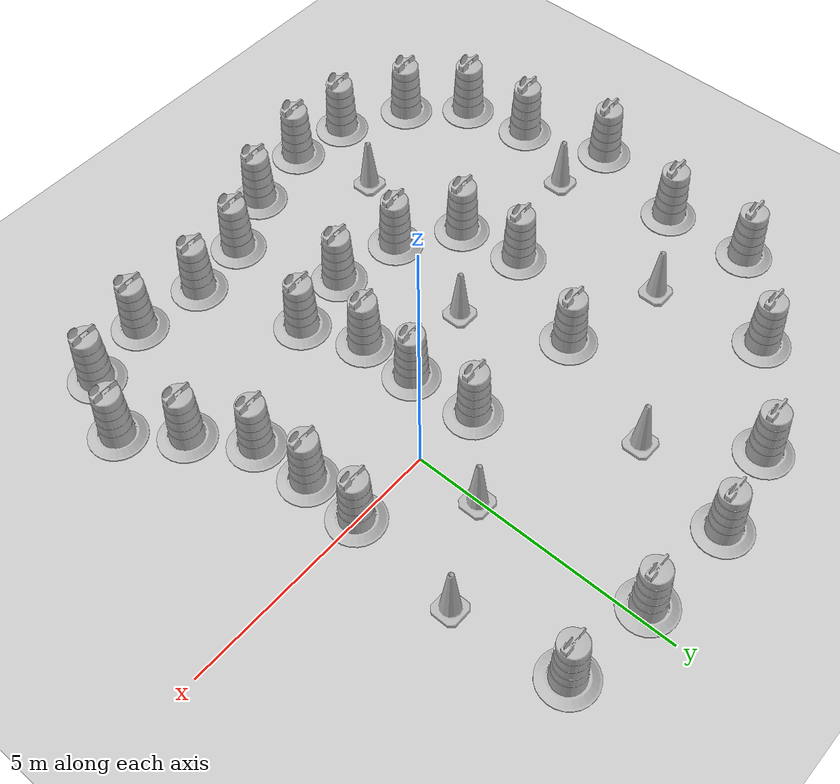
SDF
<sdf version="1.7">
 <world name="default">
  <light name="sun" type="directional">
   <pose>0 0 10 0 -0 0</pose>
   <diffuse>0.8 0.8 0.8 1</diffuse>
   <specular>0.2 0.2 0.2 1</specular>
   <attenuation>
    <range>1000</range>
    <constant>0.9</constant>
    <linear>0.01</linear>
    <quadratic>0.001</quadratic>
   </attenuation>
   <direction>-0.5 0.1 -0.9</direction>
   <spot><inner_angle>0</inner_angle><outer_angle>0</outer_angle><falloff>0</falloff></spot>
  </light>
  <model name="ground_plane">
   <static>1</static>
   <link name="link">
    <collision name="collision">
     <geometry><plane><normal>0 0 1</normal><size>100 100</size></plane></geometry>
     <surface>
      <contact><collide_bitmask>65535</collide_bitmask></contact>
      <friction><ode><mu>100</mu><mu2>50</mu2></ode></friction>
     </surface>
    </collision>
    <visual name="visual">
     <cast_shadows>0</cast_shadows>
     <geometry><plane><normal>0 0 1</normal><size>100 100</size></plane></geometry>
     <material>
      <script><uri>file://media/materials/scripts/gazebo.material</uri><name>Gazebo/Grey</name></script>
     </material>
    </visual>
   </link>
  </model>
  <gravity>0 0 -9.8</gravity>
  <magnetic_field>6e-06 2.3e-05 -4.2e-05</magnetic_field>
  <atmosphere type="adiabatic"/>
  <physics type="ode">
   <max_step_size>0.001</max_step_size>
   <real_time_factor>1</real_time_factor>
   <real_time_update_rate>1000</real_time_update_rate>
  </physics>
  <scene><ambient>0.4 0.4 0.4 1</ambient><background>0.7 0.7 0.7 1</background><shadows>1</shadows></scene>
  <spherical_coordinates>
   <surface_model>EARTH_WGS84</surface_model>
   <latitude_deg>0</latitude_deg>
   <longitude_deg>0</longitude_deg>
   <elevation>0</elevation>
   <heading_deg>0</heading_deg>
  </spherical_coordinates>
  <model name="Construction Barrel">
   <link name="link">
    <inertial>
     <pose>0 0 0.4 0 -0 0</pose>
     <mass>500</mass>
     <inertia><ixx>51.2096</ixx><iyy>51.2096</iyy><izz>25</izz><ixy>0</ixy><ixz>0</ixz><iyz>0</iyz></inertia>
    </inertial>
    <collision name="collision">
     <geometry><mesh><uri>model://construction_barrel/meshes/construction_barrel.dae</uri></mesh></geometry>
    </collision>
    <visual name="visual">
     <geometry><mesh><uri>model://construction_barrel/meshes/construction_barrel.dae</uri></mesh></geometry>
    </visual>
   </link>
   <pose>1.50129 -0.032457 -1e-06 3e-06 7e-06 -4.1e-05</pose>
  </model>
  <model name="Construction Barrel_0">
   <link name="link">
    <inertial>
     <pose>0 0 0.4 0 -0 0</pose>
     <mass>500</mass>
     <inertia><ixx>51.2096</ixx><iyy>51.2096</iyy><izz>25</izz><ixy>0</ixy><ixz>0</ixz><iyz>0</iyz></inertia>
    </inertial>
    <collision name="collision">
     <geometry><mesh><uri>model://construction_barrel/meshes/construction_barrel.dae</uri></mesh></geometry>
    </collision>
    <visual name="visual">
     <geometry><mesh><uri>model://construction_barrel/meshes/construction_barrel.dae</uri></mesh></geometry>
    </visual>
   </link>
   <pose>1.47992 -1.10936 -2e-06 1e-06 8e-06 -2.8e-05</pose>
  </model>
  <model name="Construction Barrel_1">
   <link name="link">
    <inertial>
     <pose>0 0 0.4 0 -0 0</pose>
     <mass>500</mass>
     <inertia><ixx>51.2096</ixx><iyy>51.2096</iyy><izz>25</izz><ixy>0</ixy><ixz>0</ixz><iyz>0</iyz></inertia>
    </inertial>
    <collision name="collision">
     <geometry><mesh><uri>model://construction_barrel/meshes/construction_barrel.dae</uri></mesh></geometry>
    </collision>
    <visual name="visual">
     <geometry><mesh><uri>model://construction_barrel/meshes/construction_barrel.dae</uri></mesh></geometry>
    </visual>
   </link>
   <pose>1.55071 -2.19698 -0 0 -0 -4.3e-05</pose>
  </model>
  <model name="Construction Barrel_2">
   <link name="link">
    <inertial>
     <pose>0 0 0.4 0 -0 0</pose>
     <mass>500</mass>
     <inertia><ixx>51.2096</ixx><iyy>51.2096</iyy><izz>25</izz><ixy>0</ixy><ixz>0</ixz><iyz>0</iyz></inertia>
    </inertial>
    <collision name="collision">
     <geometry><mesh><uri>model://construction_barrel/meshes/construction_barrel.dae</uri></mesh></geometry>
    </collision>
    <visual name="visual">
     <geometry><mesh><uri>model://construction_barrel/meshes/construction_barrel.dae</uri></mesh></geometry>
    </visual>
   </link>
   <pose>2.17308 -3.18027 -2e-06 1e-06 8e-06 -3.4e-05</pose>
  </model>
  <model name="Construction Cone">
   <link name="link">
    <collision name="collision">
     <geometry>
      <mesh><scale>10 10 10</scale><uri>model://construction_cone/meshes/construction_cone.dae</uri></mesh>
     </geometry>
    </collision>
    <visual name="visual">
     <geometry>
      <mesh><scale>10 10 10</scale><uri>model://construction_cone/meshes/construction_cone.dae</uri></mesh>
     </geometry>
    </visual>
    <inertial>
     <inertia><ixx>1</ixx><ixy>0</ixy><ixz>0</ixz><iyy>1</iyy><iyz>0</iyz><izz>1</izz></inertia>
     <mass>1</mass>
    </inertial>
   </link>
   <pose>0.043793 1.22764 -0 0 -0 0</pose>
  </model>
  <model name="Construction Barrel_3">
   <link name="link">
    <inertial>
     <pose>0 0 0.4 0 -0 0</pose>
     <mass>500</mass>
     <inertia><ixx>51.2096</ixx><iyy>51.2096</iyy><izz>25</izz><ixy>0</ixy><ixz>0</ixz><iyz>0</iyz></inertia>
    </inertial>
    <collision name="collision">
     <geometry><mesh><uri>model://construction_barrel/meshes/construction_barrel.dae</uri></mesh></geometry>
    </collision>
    <visual name="visual">
     <geometry><mesh><uri>model://construction_barrel/meshes/construction_barrel.dae</uri></mesh></geometry>
    </visual>
   </link>
   <pose>2.88925 -4.07505 -0 0 -0 -5.1e-05</pose>
  </model>
  <model name="Construction Barrel_4">
   <link name="link">
    <inertial>
     <pose>0 0 0.4 0 -0 0</pose>
     <mass>500</mass>
     <inertia><ixx>51.2096</ixx><iyy>51.2096</iyy><izz>25</izz><ixy>0</ixy><ixz>0</ixz><iyz>0</iyz></inertia>
    </inertial>
    <collision name="collision">
     <geometry><mesh><uri>model://construction_barrel/meshes/construction_barrel.dae</uri></mesh></geometry>
    </collision>
    <visual name="visual">
     <geometry><mesh><uri>model://construction_barrel/meshes/construction_barrel.dae</uri></mesh></geometry>
    </visual>
   </link>
   <pose>2.37088 -5.20025 -2e-06 1e-06 8e-06 -3e-05</pose>
  </model>
  <model name="Construction Barrel_5">
   <link name="link">
    <inertial>
     <pose>0 0 0.4 0 -0 0</pose>
     <mass>500</mass>
     <inertia><ixx>51.2096</ixx><iyy>51.2096</iyy><izz>25</izz><ixy>0</ixy><ixz>0</ixz><iyz>0</iyz></inertia>
    </inertial>
    <collision name="collision">
     <geometry><mesh><uri>model://construction_barrel/meshes/construction_barrel.dae</uri></mesh></geometry>
    </collision>
    <visual name="visual">
     <geometry><mesh><uri>model://construction_barrel/meshes/construction_barrel.dae</uri></mesh></geometry>
    </visual>
   </link>
   <pose>1.14317 -5.49393 -1e-06 1e-06 -9e-06 -2.7e-05</pose>
  </model>
  <model name="Construction Barrel_6">
   <link name="link">
    <inertial>
     <pose>0 0 0.4 0 -0 0</pose>
     <mass>500</mass>
     <inertia><ixx>51.2096</ixx><iyy>51.2096</iyy><izz>25</izz><ixy>0</ixy><ixz>0</ixz><iyz>0</iyz></inertia>
    </inertial>
    <collision name="collision">
     <geometry><mesh><uri>model://construction_barrel/meshes/construction_barrel.dae</uri></mesh></geometry>
    </collision>
    <visual name="visual">
     <geometry><mesh><uri>model://construction_barrel/meshes/construction_barrel.dae</uri></mesh></geometry>
    </visual>
   </link>
   <pose>-0.137895 -5.35219 0 0 0 -4.5e-05</pose>
  </model>
  <model name="Construction Barrel_7">
   <link name="link">
    <inertial>
     <pose>0 0 0.4 0 -0 0</pose>
     <mass>500</mass>
     <inertia><ixx>51.2096</ixx><iyy>51.2096</iyy><izz>25</izz><ixy>0</ixy><ixz>0</ixz><iyz>0</iyz></inertia>
    </inertial>
    <collision name="collision">
     <geometry><mesh><uri>model://construction_barrel/meshes/construction_barrel.dae</uri></mesh></geometry>
    </collision>
    <visual name="visual">
     <geometry><mesh><uri>model://construction_barrel/meshes/construction_barrel.dae</uri></mesh></geometry>
    </visual>
   </link>
   <pose>-1.2814 -5.52997 -0 0 -0 -3.6e-05</pose>
  </model>
  <model name="Construction Barrel_8">
   <link name="link">
    <inertial>
     <pose>0 0 0.4 0 -0 0</pose>
     <mass>500</mass>
     <inertia><ixx>51.2096</ixx><iyy>51.2096</iyy><izz>25</izz><ixy>0</ixy><ixz>0</ixz><iyz>0</iyz></inertia>
    </inertial>
    <collision name="collision">
     <geometry><mesh><uri>model://construction_barrel/meshes/construction_barrel.dae</uri></mesh></geometry>
    </collision>
    <visual name="visual">
     <geometry><mesh><uri>model://construction_barrel/meshes/construction_barrel.dae</uri></mesh></geometry>
    </visual>
   </link>
   <pose>-2.4013 -6.09153 0 0 0 -2.8e-05</pose>
  </model>
  <model name="Construction Barrel_9">
   <link name="link">
    <inertial>
     <pose>0 0 0.4 0 -0 0</pose>
     <mass>500</mass>
     <inertia><ixx>51.2096</ixx><iyy>51.2096</iyy><izz>25</izz><ixy>0</ixy><ixz>0</ixz><iyz>0</iyz></inertia>
    </inertial>
    <collision name="collision">
     <geometry><mesh><uri>model://construction_barrel/meshes/construction_barrel.dae</uri></mesh></geometry>
    </collision>
    <visual name="visual">
     <geometry><mesh><uri>model://construction_barrel/meshes/construction_barrel.dae</uri></mesh></geometry>
    </visual>
   </link>
   <pose>-1.23135 0.083538 -1e-06 1e-06 -9e-06 -2.8e-05</pose>
  </model>
  <model name="Construction Barrel_10">
   <link name="link">
    <inertial>
     <pose>0 0 0.4 0 -0 0</pose>
     <mass>500</mass>
     <inertia><ixx>51.2096</ixx><iyy>51.2096</iyy><izz>25</izz><ixy>0</ixy><ixz>0</ixz><iyz>0</iyz></inertia>
    </inertial>
    <collision name="collision">
     <geometry><mesh><uri>model://construction_barrel/meshes/construction_barrel.dae</uri></mesh></geometry>
    </collision>
    <visual name="visual">
     <geometry><mesh><uri>model://construction_barrel/meshes/construction_barrel.dae</uri></mesh></geometry>
    </visual>
   </link>
   <pose>-1.14704 -1.20855 -0 0 -0 -3.5e-05</pose>
  </model>
  <model name="Construction Barrel_11">
   <link name="link">
    <inertial>
     <pose>0 0 0.4 0 -0 0</pose>
     <mass>500</mass>
     <inertia><ixx>51.2096</ixx><iyy>51.2096</iyy><izz>25</izz><ixy>0</ixy><ixz>0</ixz><iyz>0</iyz></inertia>
    </inertial>
    <collision name="collision">
     <geometry><mesh><uri>model://construction_barrel/meshes/construction_barrel.dae</uri></mesh></geometry>
    </collision>
    <visual name="visual">
     <geometry><mesh><uri>model://construction_barrel/meshes/construction_barrel.dae</uri></mesh></geometry>
    </visual>
   </link>
   <pose>-1.14896 -2.2773 1e-06 3e-06 2e-06 -3.7e-05</pose>
  </model>
  <model name="Construction Barrel_12">
   <link name="link">
    <inertial>
     <pose>0 0 0.4 0 -0 0</pose>
     <mass>500</mass>
     <inertia><ixx>51.2096</ixx><iyy>51.2096</iyy><izz>25</izz><ixy>0</ixy><ixz>0</ixz><iyz>0</iyz></inertia>
    </inertial>
    <collision name="collision">
     <geometry><mesh><uri>model://construction_barrel/meshes/construction_barrel.dae</uri></mesh></geometry>
    </collision>
    <visual name="visual">
     <geometry><mesh><uri>model://construction_barrel/meshes/construction_barrel.dae</uri></mesh></geometry>
    </visual>
   </link>
   <pose>-0.714588 -3.35942 1e-06 3e-06 2e-06 -3.5e-05</pose>
  </model>
  <model name="Construction Barrel_13">
   <link name="link">
    <inertial>
     <pose>0 0 0.4 0 -0 0</pose>
     <mass>500</mass>
     <inertia><ixx>51.2096</ixx><iyy>51.2096</iyy><izz>25</izz><ixy>0</ixy><ixz>0</ixz><iyz>0</iyz></inertia>
    </inertial>
    <collision name="collision">
     <geometry><mesh><uri>model://construction_barrel/meshes/construction_barrel.dae</uri></mesh></geometry>
    </collision>
    <visual name="visual">
     <geometry><mesh><uri>model://construction_barrel/meshes/construction_barrel.dae</uri></mesh></geometry>
    </visual>
   </link>
   <pose>-1.91974 -3.60846 1e-06 3e-06 2e-06 -3.4e-05</pose>
  </model>
  <model name="Construction Barrel_14">
   <link name="link">
    <inertial>
     <pose>0 0 0.4 0 -0 0</pose>
     <mass>500</mass>
     <inertia><ixx>51.2096</ixx><iyy>51.2096</iyy><izz>25</izz><ixy>0</ixy><ixz>0</ixz><iyz>0</iyz></inertia>
    </inertial>
    <collision name="collision">
     <geometry><mesh><uri>model://construction_barrel/meshes/construction_barrel.dae</uri></mesh></geometry>
    </collision>
    <visual name="visual">
     <geometry><mesh><uri>model://construction_barrel/meshes/construction_barrel.dae</uri></mesh></geometry>
    </visual>
   </link>
   <pose>-3.21639 -3.40603 1e-06 3e-06 2e-06 -3.3e-05</pose>
  </model>
  <model name="Construction Barrel_15">
   <link name="link">
    <inertial>
     <pose>0 0 0.4 0 -0 0</pose>
     <mass>500</mass>
     <inertia><ixx>51.2096</ixx><iyy>51.2096</iyy><izz>25</izz><ixy>0</ixy><ixz>0</ixz><iyz>0</iyz></inertia>
    </inertial>
    <collision name="collision">
     <geometry><mesh><uri>model://construction_barrel/meshes/construction_barrel.dae</uri></mesh></geometry>
    </collision>
    <visual name="visual">
     <geometry><mesh><uri>model://construction_barrel/meshes/construction_barrel.dae</uri></mesh></geometry>
    </visual>
   </link>
   <pose>-3.71649 -6.37083 1e-06 3e-06 2e-06 -3.2e-05</pose>
  </model>
  <model name="Construction Cone_0">
   <link name="link">
    <collision name="collision">
     <geometry>
      <mesh><scale>10 10 10</scale><uri>model://construction_cone/meshes/construction_cone.dae</uri></mesh>
     </geometry>
    </collision>
    <visual name="visual">
     <geometry>
      <mesh><scale>10 10 10</scale><uri>model://construction_cone/meshes/construction_cone.dae</uri></mesh>
     </geometry>
    </visual>
    <inertial>
     <inertia><ixx>1</ixx><ixy>0</ixy><ixz>0</ixz><iyy>1</iyy><iyz>0</iyz><izz>1</izz></inertia>
     <mass>1</mass>
    </inertial>
   </link>
   <pose>-4.03272 -4.79475 -0 0 -0 0</pose>
  </model>
  <model name="Construction Barrel_16">
   <link name="link">
    <inertial>
     <pose>0 0 0.4 0 -0 0</pose>
     <mass>500</mass>
     <inertia><ixx>51.2096</ixx><iyy>51.2096</iyy><izz>25</izz><ixy>0</ixy><ixz>0</ixz><iyz>0</iyz></inertia>
    </inertial>
    <collision name="collision">
     <geometry><mesh><uri>model://construction_barrel/meshes/construction_barrel.dae</uri></mesh></geometry>
    </collision>
    <visual name="visual">
     <geometry><mesh><uri>model://construction_barrel/meshes/construction_barrel.dae</uri></mesh></geometry>
    </visual>
   </link>
   <pose>-4.26744 -2.70708 1e-06 3e-06 2e-06 -2.9e-05</pose>
  </model>
  <model name="Construction Barrel_17">
   <link name="link">
    <inertial>
     <pose>0 0 0.4 0 -0 0</pose>
     <mass>500</mass>
     <inertia><ixx>51.2096</ixx><iyy>51.2096</iyy><izz>25</izz><ixy>0</ixy><ixz>0</ixz><iyz>0</iyz></inertia>
    </inertial>
    <collision name="collision">
     <geometry><mesh><uri>model://construction_barrel/meshes/construction_barrel.dae</uri></mesh></geometry>
    </collision>
    <visual name="visual">
     <geometry><mesh><uri>model://construction_barrel/meshes/construction_barrel.dae</uri></mesh></geometry>
    </visual>
   </link>
   <pose>-4.8155 -6.23968 1e-06 3e-06 2e-06 -2.8e-05</pose>
  </model>
  <model name="Construction Barrel_18">
   <link name="link">
    <inertial>
     <pose>0 0 0.4 0 -0 0</pose>
     <mass>500</mass>
     <inertia><ixx>51.2096</ixx><iyy>51.2096</iyy><izz>25</izz><ixy>0</ixy><ixz>0</ixz><iyz>0</iyz></inertia>
    </inertial>
    <collision name="collision">
     <geometry><mesh><uri>model://construction_barrel/meshes/construction_barrel.dae</uri></mesh></geometry>
    </collision>
    <visual name="visual">
     <geometry><mesh><uri>model://construction_barrel/meshes/construction_barrel.dae</uri></mesh></geometry>
    </visual>
   </link>
   <pose>-6.01285 -5.60975 1e-06 3e-06 2e-06 -2.7e-05</pose>
  </model>
  <model name="Construction Barrel_19">
   <link name="link">
    <inertial>
     <pose>0 0 0.4 0 -0 0</pose>
     <mass>500</mass>
     <inertia><ixx>51.2096</ixx><iyy>51.2096</iyy><izz>25</izz><ixy>0</ixy><ixz>0</ixz><iyz>0</iyz></inertia>
    </inertial>
    <collision name="collision">
     <geometry><mesh><uri>model://construction_barrel/meshes/construction_barrel.dae</uri></mesh></geometry>
    </collision>
    <visual name="visual">
     <geometry><mesh><uri>model://construction_barrel/meshes/construction_barrel.dae</uri></mesh></geometry>
    </visual>
   </link>
   <pose>-6.82915 -4.6875 1e-06 3e-06 2e-06 -2.6e-05</pose>
  </model>
  <model name="Construction Barrel_20">
   <link name="link">
    <inertial>
     <pose>0 0 0.4 0 -0 0</pose>
     <mass>500</mass>
     <inertia><ixx>51.2096</ixx><iyy>51.2096</iyy><izz>25</izz><ixy>0</ixy><ixz>0</ixz><iyz>0</iyz></inertia>
    </inertial>
    <collision name="collision">
     <geometry><mesh><uri>model://construction_barrel/meshes/construction_barrel.dae</uri></mesh></geometry>
    </collision>
    <visual name="visual">
     <geometry><mesh><uri>model://construction_barrel/meshes/construction_barrel.dae</uri></mesh></geometry>
    </visual>
   </link>
   <pose>-7.07547 -3.4447 1e-06 3e-06 2e-06 -2.5e-05</pose>
  </model>
  <model name="Construction Barrel_21">
   <link name="link">
    <inertial>
     <pose>0 0 0.4 0 -0 0</pose>
     <mass>500</mass>
     <inertia><ixx>51.2096</ixx><iyy>51.2096</iyy><izz>25</izz><ixy>0</ixy><ixz>0</ixz><iyz>0</iyz></inertia>
    </inertial>
    <collision name="collision">
     <geometry><mesh><uri>model://construction_barrel/meshes/construction_barrel.dae</uri></mesh></geometry>
    </collision>
    <visual name="visual">
     <geometry><mesh><uri>model://construction_barrel/meshes/construction_barrel.dae</uri></mesh></geometry>
    </visual>
   </link>
   <pose>-4.41554 -1.48869 1e-06 3e-06 2e-06 -2.3e-05</pose>
  </model>
  <model name="Construction Cone_1">
   <link name="link">
    <collision name="collision">
     <geometry>
      <mesh><scale>10 10 10</scale><uri>model://construction_cone/meshes/construction_cone.dae</uri></mesh>
     </geometry>
    </collision>
    <visual name="visual">
     <geometry>
      <mesh><scale>10 10 10</scale><uri>model://construction_cone/meshes/construction_cone.dae</uri></mesh>
     </geometry>
    </visual>
    <inertial>
     <inertia><ixx>1</ixx><ixy>0</ixy><ixz>0</ixz><iyy>1</iyy><iyz>0</iyz><izz>1</izz></inertia>
     <mass>1</mass>
    </inertial>
   </link>
   <pose>-6.40935 -2.06126 -1e-05 -1e-06 0 0</pose>
  </model>
  <model name="Construction Barrel_22">
   <link name="link">
    <inertial>
     <pose>0 0 0.4 0 -0 0</pose>
     <mass>500</mass>
     <inertia><ixx>51.2096</ixx><iyy>51.2096</iyy><izz>25</izz><ixy>0</ixy><ixz>0</ixz><iyz>0</iyz></inertia>
    </inertial>
    <collision name="collision">
     <geometry><mesh><uri>model://construction_barrel/meshes/construction_barrel.dae</uri></mesh></geometry>
    </collision>
    <visual name="visual">
     <geometry><mesh><uri>model://construction_barrel/meshes/construction_barrel.dae</uri></mesh></geometry>
    </visual>
   </link>
   <pose>-3.48144 0.358987 1e-06 3e-06 2e-06 -2.1e-05</pose>
  </model>
  <model name="Construction Barrel_23">
   <link name="link">
    <inertial>
     <pose>0 0 0.4 0 -0 0</pose>
     <mass>500</mass>
     <inertia><ixx>51.2096</ixx><iyy>51.2096</iyy><izz>25</izz><ixy>0</ixy><ixz>0</ixz><iyz>0</iyz></inertia>
    </inertial>
    <collision name="collision">
     <geometry><mesh><uri>model://construction_barrel/meshes/construction_barrel.dae</uri></mesh></geometry>
    </collision>
    <visual name="visual">
     <geometry><mesh><uri>model://construction_barrel/meshes/construction_barrel.dae</uri></mesh></geometry>
    </visual>
   </link>
   <pose>-7.60052 -1.90479 1e-06 3e-06 2e-06 -2e-05</pose>
  </model>
  <model name="Construction Barrel_24">
   <link name="link">
    <inertial>
     <pose>0 0 0.4 0 -0 0</pose>
     <mass>500</mass>
     <inertia><ixx>51.2096</ixx><iyy>51.2096</iyy><izz>25</izz><ixy>0</ixy><ixz>0</ixz><iyz>0</iyz></inertia>
    </inertial>
    <collision name="collision">
     <geometry><mesh><uri>model://construction_barrel/meshes/construction_barrel.dae</uri></mesh></geometry>
    </collision>
    <visual name="visual">
     <geometry><mesh><uri>model://construction_barrel/meshes/construction_barrel.dae</uri></mesh></geometry>
    </visual>
   </link>
   <pose>-7.06643 -0.030274 -0 0 0 -1.8e-05</pose>
  </model>
  <model name="Construction Barrel_25">
   <link name="link">
    <inertial>
     <pose>0 0 0.4 0 -0 0</pose>
     <mass>500</mass>
     <inertia><ixx>51.2096</ixx><iyy>51.2096</iyy><izz>25</izz><ixy>0</ixy><ixz>0</ixz><iyz>0</iyz></inertia>
    </inertial>
    <collision name="collision">
     <geometry><mesh><uri>model://construction_barrel/meshes/construction_barrel.dae</uri></mesh></geometry>
    </collision>
    <visual name="visual">
     <geometry><mesh><uri>model://construction_barrel/meshes/construction_barrel.dae</uri></mesh></geometry>
    </visual>
   </link>
   <pose>1.46272 4.09765 -2e-06 8e-06 -4e-06 -1.7e-05</pose>
  </model>
  <model name="Construction Barrel_26">
   <link name="link">
    <inertial>
     <pose>0 0 0.4 0 -0 0</pose>
     <mass>500</mass>
     <inertia><ixx>51.2096</ixx><iyy>51.2096</iyy><izz>25</izz><ixy>0</ixy><ixz>0</ixz><iyz>0</iyz></inertia>
    </inertial>
    <collision name="collision">
     <geometry><mesh><uri>model://construction_barrel/meshes/construction_barrel.dae</uri></mesh></geometry>
    </collision>
    <visual name="visual">
     <geometry><mesh><uri>model://construction_barrel/meshes/construction_barrel.dae</uri></mesh></geometry>
    </visual>
   </link>
   <pose>-0.237473 4.31511 -1e-06 3e-06 7e-06 -1.5e-05</pose>
  </model>
  <model name="Construction Barrel_27">
   <link name="link">
    <inertial>
     <pose>0 0 0.4 0 -0 0</pose>
     <mass>500</mass>
     <inertia><ixx>51.2096</ixx><iyy>51.2096</iyy><izz>25</izz><ixy>0</ixy><ixz>0</ixz><iyz>0</iyz></inertia>
    </inertial>
    <collision name="collision">
     <geometry><mesh><uri>model://construction_barrel/meshes/construction_barrel.dae</uri></mesh></geometry>
    </collision>
    <visual name="visual">
     <geometry><mesh><uri>model://construction_barrel/meshes/construction_barrel.dae</uri></mesh></geometry>
    </visual>
   </link>
   <pose>-2.08082 4.44976 0 0 0 -1.5e-05</pose>
  </model>
  <model name="Construction Barrel_28">
   <link name="link">
    <inertial>
     <pose>0 0 0.4 0 -0 0</pose>
     <mass>500</mass>
     <inertia><ixx>51.2096</ixx><iyy>51.2096</iyy><izz>25</izz><ixy>0</ixy><ixz>0</ixz><iyz>0</iyz></inertia>
    </inertial>
    <collision name="collision">
     <geometry><mesh><uri>model://construction_barrel/meshes/construction_barrel.dae</uri></mesh></geometry>
    </collision>
    <visual name="visual">
     <geometry><mesh><uri>model://construction_barrel/meshes/construction_barrel.dae</uri></mesh></geometry>
    </visual>
   </link>
   <pose>-3.71811 4.15379 -0 1e-06 -1e-06 -1.2e-05</pose>
  </model>
  <model name="Construction Barrel_29">
   <link name="link">
    <inertial>
     <pose>0 0 0.4 0 -0 0</pose>
     <mass>500</mass>
     <inertia><ixx>51.2096</ixx><iyy>51.2096</iyy><izz>25</izz><ixy>0</ixy><ixz>0</ixz><iyz>0</iyz></inertia>
    </inertial>
    <collision name="collision">
     <geometry><mesh><uri>model://construction_barrel/meshes/construction_barrel.dae</uri></mesh></geometry>
    </collision>
    <visual name="visual">
     <geometry><mesh><uri>model://construction_barrel/meshes/construction_barrel.dae</uri></mesh></geometry>
    </visual>
   </link>
   <pose>-5.60865 2.92505 -1e-06 0 5e-06 -1e-05</pose>
  </model>
  <model name="Construction Barrel_30">
   <link name="link">
    <inertial>
     <pose>0 0 0.4 0 -0 0</pose>
     <mass>500</mass>
     <inertia><ixx>51.2096</ixx><iyy>51.2096</iyy><izz>25</izz><ixy>0</ixy><ixz>0</ixz><iyz>0</iyz></inertia>
    </inertial>
    <collision name="collision">
     <geometry><mesh><uri>model://construction_barrel/meshes/construction_barrel.dae</uri></mesh></geometry>
    </collision>
    <visual name="visual">
     <geometry><mesh><uri>model://construction_barrel/meshes/construction_barrel.dae</uri></mesh></geometry>
    </visual>
   </link>
   <pose>-7.1291 1.58691 -2e-06 -0 7e-06 -8e-06</pose>
  </model>
  <model name="Construction Cone_2">
   <link name="link">
    <collision name="collision">
     <geometry>
      <mesh><scale>10 10 10</scale><uri>model://construction_cone/meshes/construction_cone.dae</uri></mesh>
     </geometry>
    </collision>
    <visual name="visual">
     <geometry>
      <mesh><scale>10 10 10</scale><uri>model://construction_cone/meshes/construction_cone.dae</uri></mesh>
     </geometry>
    </visual>
    <inertial>
     <inertia><ixx>1</ixx><ixy>0</ixy><ixz>0</ixz><iyy>1</iyy><iyz>0</iyz><izz>1</izz></inertia>
     <mass>1</mass>
    </inertial>
   </link>
   <pose>-2.55076 2.53796 -8e-06 0 1e-06 0</pose>
  </model>
  <model name="Construction Cone_3">
   <link name="link">
    <collision name="collision">
     <geometry>
      <mesh><scale>10 10 10</scale><uri>model://construction_cone/meshes/construction_cone.dae</uri></mesh>
     </geometry>
    </collision>
    <visual name="visual">
     <geometry>
      <mesh><scale>10 10 10</scale><uri>model://construction_cone/meshes/construction_cone.dae</uri></mesh>
     </geometry>
    </visual>
    <inertial>
     <inertia><ixx>1</ixx><ixy>0</ixy><ixz>0</ixz><iyy>1</iyy><iyz>0</iyz><izz>1</izz></inertia>
     <mass>1</mass>
    </inertial>
   </link>
   <pose>-5.36443 0.871158 -1e-05 -1e-06 0 0</pose>
  </model>
  <model name="Construction Cone_4">
   <link name="link">
    <collision name="collision">
     <geometry>
      <mesh><scale>10 10 10</scale><uri>model://construction_cone/meshes/construction_cone.dae</uri></mesh>
     </geometry>
    </collision>
    <visual name="visual">
     <geometry>
      <mesh><scale>10 10 10</scale><uri>model://construction_cone/meshes/construction_cone.dae</uri></mesh>
     </geometry>
    </visual>
    <inertial>
     <inertia><ixx>1</ixx><ixy>0</ixy><ixz>0</ixz><iyy>1</iyy><iyz>0</iyz><izz>1</izz></inertia>
     <mass>1</mass>
    </inertial>
   </link>
   <pose>-2.71629 -1.45424 -0 0 -0 0</pose>
  </model>
  <model name="Construction Cone_5">
   <link name="link">
    <collision name="collision">
     <geometry>
      <mesh><scale>10 10 10</scale><uri>model://construction_cone/meshes/construction_cone.dae</uri></mesh>
     </geometry>
    </collision>
    <visual name="visual">
     <geometry>
      <mesh><scale>10 10 10</scale><uri>model://construction_cone/meshes/construction_cone.dae</uri></mesh>
     </geometry>
    </visual>
    <inertial>
     <inertia><ixx>1</ixx><ixy>0</ixy><ixz>0</ixz><iyy>1</iyy><iyz>0</iyz><izz>1</izz></inertia>
     <mass>1</mass>
    </inertial>
   </link>
   <pose>1.73168 2.09283 -0 0 -1e-06 0</pose>
  </model>
 </world>
</sdf>
